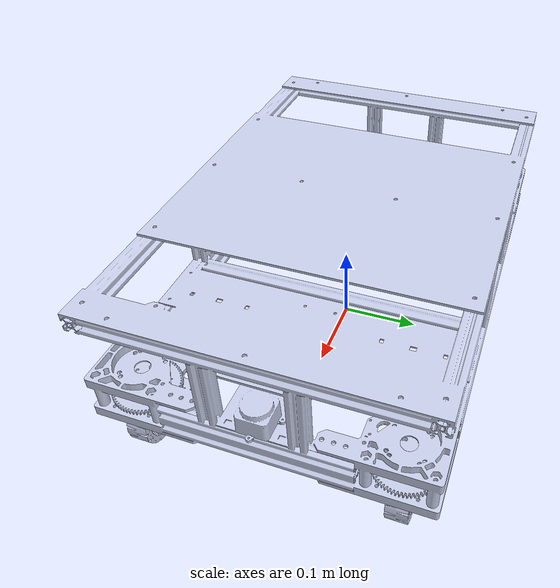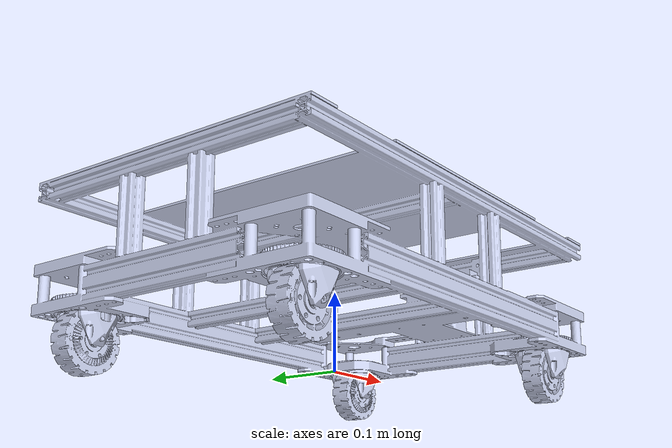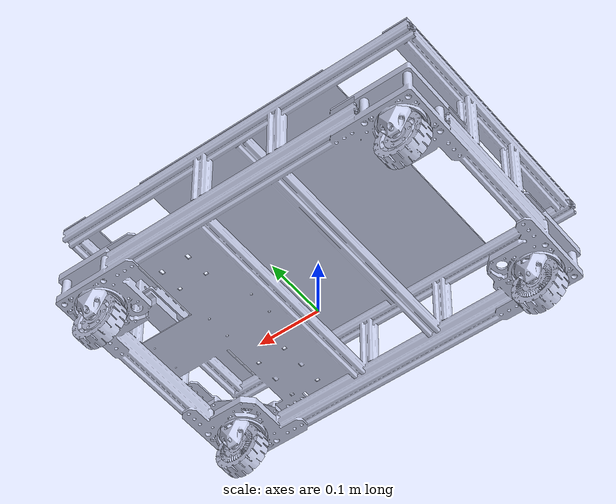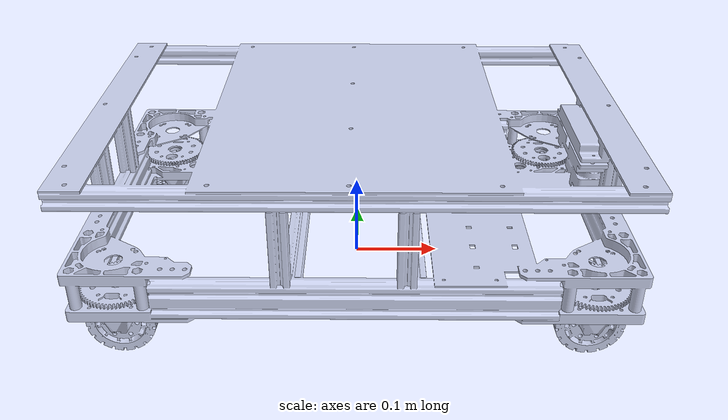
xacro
<?xml version="1.0"?>

<robot xmlns:xacro="http://www.ros.org/wiki/xacro"  name="robot">

    <xacro:arg name="use_ros2_control" default="true"/>
    <xacro:arg name="is_simulation" default="true"/>

    <xacro:include filename="robot.urdf"/>

    <xacro:if value="$(arg is_simulation)">
        <xacro:include filename="lidar_gazebo.xacro" />
    </xacro:if>
    <xacro:unless value="$(arg is_simulation)">
        <xacro:include filename="lidar.xacro" />
        <xacro:add_lidar_mount parent_link="chassis_link"/>
    </xacro:unless>

     <xacro:if value="$(arg use_ros2_control)">
        <xacro:include filename="ros2_control.xacro" />
    </xacro:if>
    <xacro:unless value="$(arg use_ros2_control)">
        <xacro:include filename="gazebo_control.xacro" />
    </xacro:unless>

</robot>

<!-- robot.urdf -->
<robot
  name="AGV">

  <!-- Empty link to link the AGV to the world -->
  <link
    name="base_footprint">
  </link>

  <!-- CHASSIS -->
  <!-- Connection between base_footprint and chassislink -->
  <joint
    name="joint_chassis_to_footprint"
    type="fixed">
    <origin
      xyz="0 0 0.2"
      rpy="0 0 0" />
    <parent
      link="base_footprint" />
    <child
      link="chassis_link" />
  </joint>
  <link
    name="chassis_link">
<inertial>
      <origin
        xyz="0.025237 1.2945E-05 -0.056914"
        rpy="0 0 0" />
      <mass
        value="1.633" />
      <inertia
        ixx="0.011274"
        ixy="-2.8299E-09"
        ixz="-9.573E-07"
        iyy="0.013009"
        iyz="-5.8805E-11"
        izz="0.023965" />
    </inertial>
    <visual>
      <origin
        xyz="0 0 0"
        rpy="0 0 0" />
      <geometry>
        <mesh
          filename="file://$(find agv_pkg)/meshes/chassis_link.STL" />
      </geometry>
      <material
        name="">
        <color
          rgba="0.79216 0.81961 0.92941 1" />
      </material>
    </visual>
    <collision>
      <origin
        xyz="0 0 0"
        rpy="0 0 0" />
      <geometry>
        <mesh
          filename="file://$(find agv_pkg)/meshes/chassis_link.STL" />
      </geometry>
    </collision>
  </link>

  <!-- LEFT FRONT WHEEL -->
    <!-- STEERING -->
  <joint
    name="joint_chassis_to_steering_left_front"
    type="continuous">
    <origin
      xyz="0.255550000000001 0.155549999999982 -0.138712499998103"
      rpy="0 0 0" />
    <parent
      link="chassis_link" />
    <child
      link="Left_wheel_front_steering_link" />
    <axis
      xyz="0 0 1" />
  </joint>
  <link
    name="Left_wheel_front_steering_link">
<inertial>
      <origin
        xyz="-4.7964E-09 0.0017232 -0.014598"
        rpy="0 0 0" />
      <mass
        value="0.15549" />
      <inertia
        ixx="3.8266E-05"
        ixy="-1.1718E-11"
        ixz="8.8188E-12"
        iyy="5.3605E-05"
        iyz="1.2501E-07"
        izz="7.5895E-05" />
    </inertial>
    <visual>
      <origin
        xyz="0 0 0"
        rpy="0 0 0" />
      <geometry>
        <mesh
          filename="file://$(find agv_pkg)/meshes/LF_Link.STL" />
      </geometry>
      <material
        name="">
        <color
          rgba="0.79216 0.81961 0.92941 1" />
      </material>
    </visual>
    <collision>
      <origin
        xyz="0 0 0"
        rpy="0 0 0" />
      <geometry>
        <mesh
          filename="file://$(find agv_pkg)/meshes/LF_Link.STL" />
      </geometry>
    </collision>
  </link>
    <!-- DRIVING -->
  <joint
    name="joint_steering_to_wheel_left_front"
    type="continuous">
    <origin
      xyz="0 0 -0.046037"
      rpy="0 0 0" />
    <parent
      link="Left_wheel_front_steering_link" />
    <child
      link="Left_wheel_front_driving_link" />
    <axis
      xyz="0 1 0" />
  </joint>
  <link
    name="Left_wheel_front_driving_link">
    <inertial>
      <origin
        xyz="-6.4834E-08 -0.0017979 8.3053E-10"
        rpy="0 0 0" />
      <mass
        value="0.082726" />
      <inertia
        ixx="3.6609E-05"
        ixy="4.9989E-12"
        ixz="1.0933E-12"
        iyy="6.5135E-05"
        iyz="1.2166E-10"
        izz="3.6626E-05" />
    </inertial>
    <visual>
      <origin
        xyz="0 0 0"
        rpy="0 0 0" />
      <geometry>
        <mesh
          filename="file://$(find agv_pkg)/meshes/LFW_Link.STL" />
      </geometry>
      <material
        name="">
        <color
          rgba="0.792156862745098 0.819607843137255 0.929411764705882 1" />
      </material>
    </visual>
    <collision>
      <origin
        xyz="0 0 0"
        rpy="0 0 0" />
      <geometry>
        <mesh
          filename="file://$(find agv_pkg)/meshes/LFW_Link.STL" />
      </geometry>
    </collision>
  </link>

  <!-- LEFT REAR WHEEL -->
    <!-- STEERING -->
  <joint
    name="joint_chassis_to_steering_left_rear"
    type="continuous">
    <origin
      xyz="-0.255549999999999 0.15555 -0.138712499998099"
      rpy="0 0 0" />
    <parent
      link="chassis_link" />
    <child
      link="Left_wheel_rear_steering_link" />
    <axis
      xyz="0 0 1" />
  </joint>
  <link
    name="Left_wheel_rear_steering_link">
    <inertial>
      <origin
        xyz="-5.0415E-09 0.0017232 -0.014598"
        rpy="0 0 0" />
      <mass
        value="0.15549" />
      <inertia
        ixx="3.8266E-05"
        ixy="-1.1713E-11"
        ixz="8.8832E-12"
        iyy="5.3605E-05"
        iyz="1.2501E-07"
        izz="7.5895E-05" />
    </inertial>
    <visual>
      <origin
        xyz="0 0 0"
        rpy="0 0 0" />
      <geometry>
        <mesh
          filename="file://$(find agv_pkg)/meshes/LB_Link.STL" />
      </geometry>
      <material
        name="">
        <color
          rgba="0.79216 0.81961 0.92941 1" />
      </material>
    </visual>
    <collision>
      <origin
        xyz="0 0 0"
        rpy="0 0 0" />
      <geometry>
        <mesh
          filename="file://$(find agv_pkg)/meshes/LB_Link.STL" />
      </geometry>
    </collision>
  </link>
    <!-- DRIVING -->
  <joint
    name="joint_steering_to_wheel_left_rear"
    type="continuous">
    <origin
      xyz="0 0 -0.046038"
      rpy="0 0 0" />
    <parent
      link="Left_wheel_rear_steering_link" />
    <child
      link="Left_wheel_rear_driving_link" />
    <axis
      xyz="0 1 0" />
  </joint>
  <link
    name="Left_wheel_rear_driving_link">
    <inertial>
      <origin
        xyz="-6.4925E-08 -0.0017979 8.9125E-10"
        rpy="0 0 0" />
      <mass
        value="0.082726" />
      <inertia
        ixx="3.6609E-05"
        ixy="4.9205E-12"
        ixz="1.2269E-12"
        iyy="6.5135E-05"
        iyz="1.2164E-10"
        izz="3.6626E-05" />
    </inertial>
    <visual>
      <origin
        xyz="0 0 0"
        rpy="0 0 0" />
      <geometry>
        <mesh
          filename="file://$(find agv_pkg)/meshes/LBW_Link.STL" />
      </geometry>
      <material
        name="">
        <color
          rgba="0.792156862745098 0.819607843137255 0.929411764705882 1" />
      </material>
    </visual>
    <collision>
      <origin
        xyz="0 0 0"
        rpy="0 0 0" />
      <geometry>
        <mesh
          filename="file://$(find agv_pkg)/meshes/LBW_Link.STL" />
      </geometry>
    </collision>
  </link>

  <!-- RIGHT REAR WHEEL -->
    <!-- STEERING -->
  <joint
    name="joint_chassis_to_steering_right_rear"
    type="continuous">
    <origin
      xyz="-0.255550000000001 -0.155550000000001 -0.138712499998098"
      rpy="0 0 0" />
    <parent
      link="chassis_link" />
    <child
      link="Right_wheel_rear_steering_link" />
    <axis
      xyz="0 0 1" />
  </joint>
  <link
    name="Right_wheel_rear_steering_link">
    <inertial>
      <origin
        xyz="4.5222E-09 -0.0017232 -0.014598"
        rpy="0 0 0" />
      <mass
        value="0.15549" />
      <inertia
        ixx="3.8266E-05"
        ixy="-1.1438E-11"
        ixz="-8.2947E-12"
        iyy="5.3605E-05"
        iyz="-1.2501E-07"
        izz="7.5895E-05" />
    </inertial>
    <visual>
      <origin
        xyz="0 0 0"
        rpy="0 0 0" />
      <geometry>
        <mesh
          filename="file://$(find agv_pkg)/meshes/RB_Link.STL" />
      </geometry>
      <material
        name="">
        <color
          rgba="0.79216 0.81961 0.92941 1" />
      </material>
    </visual>
    <collision>
      <origin
        xyz="0 0 0"
        rpy="0 0 0" />
      <geometry>
        <mesh
          filename="file://$(find agv_pkg)/meshes/RB_Link.STL" />
      </geometry>
    </collision>
  </link>
    <!-- DRIVING -->
  <joint
    name="joint_steering_to_wheel_right_rear"
    type="continuous">
    <origin
      xyz="0 0 -0.046038"
      rpy="0 0 0" />
    <parent
      link="Right_wheel_rear_steering_link" />
    <child
      link="Right_wheel_rear_driving_link" />
    <axis
      xyz="0 1 0" />
  </joint>
  <link
    name="Right_wheel_rear_driving_link">
    <inertial>
      <origin
        xyz="6.4622E-08 0.0017979 6.2292E-10"
        rpy="0 0 0" />
      <mass
        value="0.082726" />
      <inertia
        ixx="3.6609E-05"
        ixy="4.8252E-12"
        ixz="-1.2576E-12"
        iyy="6.5135E-05"
        iyz="-1.2166E-10"
        izz="3.6626E-05" />
    </inertial>
    <visual>
      <origin
        xyz="0 0 0"
        rpy="0 0 0" />
      <geometry>
        <mesh
          filename="file://$(find agv_pkg)/meshes/RBW_Link.STL" />
      </geometry>
      <material
        name="">
        <color
          rgba="0.792156862745098 0.819607843137255 0.929411764705882 1" />
      </material>
    </visual>
    <collision>
      <origin
        xyz="0 0 0"
        rpy="0 0 0" />
      <geometry>
        <mesh
          filename="file://$(find agv_pkg)/meshes/RBW_Link.STL" />
      </geometry>
    </collision>
  </link>

  <!-- RIGHT FRONT WHEEL -->
    <!-- STEERING -->
  <joint
    name="joint_chassis_to_steering_right_front"
    type="continuous">
    <origin
      xyz="0.255549999999999 -0.155550000000019 -0.1387124999981"
      rpy="0 0 0" />
    <parent
      link="chassis_link" />
    <child
      link="Right_wheel_front_steering_link" />
    <axis
      xyz="0 0 1" />
  </joint>
  <link
    name="Right_wheel_front_steering_link">
    <inertial>
      <origin
        xyz="4.7964E-09 -0.0017232 -0.014598"
        rpy="0 0 0" />
      <mass
        value="0.15549" />
      <inertia
        ixx="3.8266E-05"
        ixy="-1.1718E-11"
        ixz="-8.8188E-12"
        iyy="5.3605E-05"
        iyz="-1.2501E-07"
        izz="7.5895E-05" />
    </inertial>
    <visual>
      <origin
        xyz="0 0 0"
        rpy="0 0 0" />
      <geometry>
        <mesh
          filename="file://$(find agv_pkg)/meshes/RF_Link.STL" />
      </geometry>
      <material
        name="">
        <color
          rgba="0.79216 0.81961 0.92941 1" />
      </material>
    </visual>
    <collision>
      <origin
        xyz="0 0 0"
        rpy="0 0 0" />
      <geometry>
        <mesh
          filename="file://$(find agv_pkg)/meshes/RF_Link.STL" />
      </geometry>
    </collision>
  </link>
    <!-- DRIVING -->
  <joint
    name="joint_steering_to_wheel_right_front"
    type="continuous">
    <origin
      xyz="0 0 -0.046038"
      rpy="0 0 0" />
    <parent
      link="Right_wheel_front_steering_link" />
    <child
      link="Right_wheel_front_driving_link" />
    <axis
      xyz="0 1 0" />
  </joint>
  <link
    name="Right_wheel_front_driving_link">
    <inertial>
      <origin
        xyz="6.4733E-08 0.0017979 2.4451E-10"
        rpy="0 0 0" />
      <mass
        value="0.082726" />
      <inertia
        ixx="3.6609E-05"
        ixy="4.91E-12"
        ixz="-1.2581E-12"
        iyy="6.5135E-05"
        iyz="-1.2192E-10"
        izz="3.6626E-05" />
    </inertial>
    <visual>
      <origin
        xyz="0 0 0"
        rpy="0 0 0" />
      <geometry>
        <mesh
          filename="file://$(find agv_pkg)/meshes/RFW_Link.STL" />
      </geometry>
      <material
        name="">
        <color
          rgba="0.792156862745098 0.819607843137255 0.929411764705882 1" />
      </material>
    </visual>
    <collision>
      <origin
        xyz="0 0 0"
        rpy="0 0 0" />
      <geometry>
        <mesh
          filename="file://$(find agv_pkg)/meshes/RFW_Link.STL" />
      </geometry>
    </collision>
  </link>

</robot>
